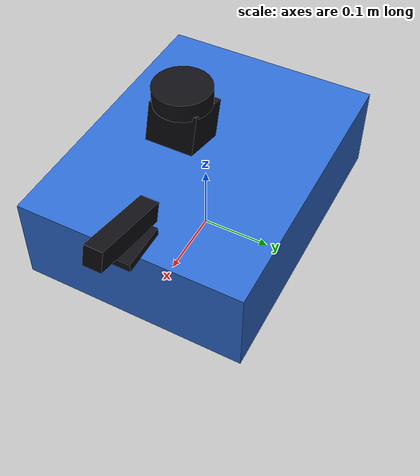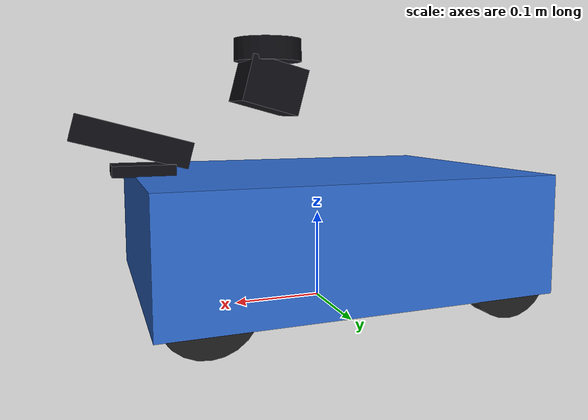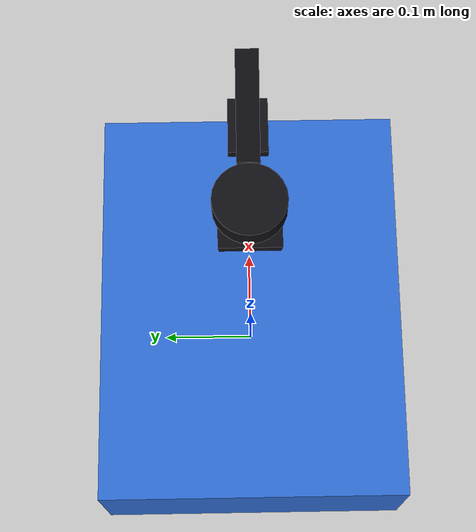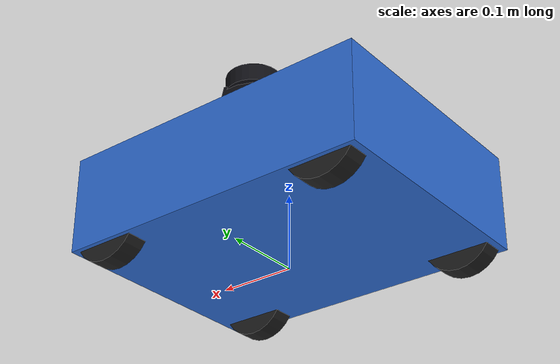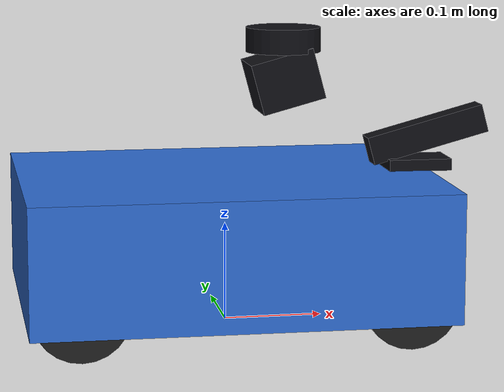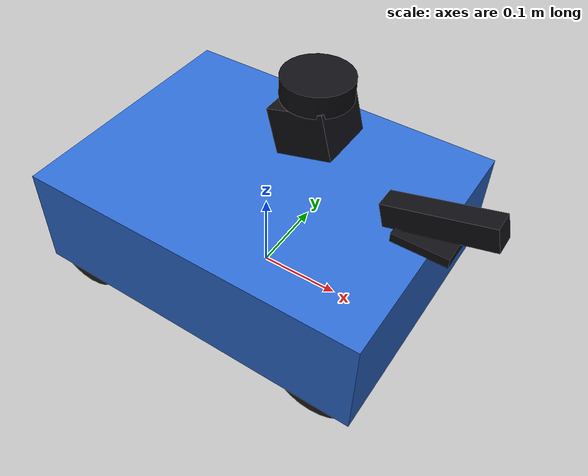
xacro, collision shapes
<?xml version="1.0"?>
<!--
  scout.urdf.xacro — Scout 探测先遣机

  传感器: RPLidar + Livox Mid-360 + RealSense D455 + AWR1642 + UWB + IMU
  尺寸: 420×320mm, 6.5kg
  网格: linorobot2 chassis.dae + tire.dae (坐标系已对齐)
-->
<robot name="scout" xmlns:xacro="http://ros.org/wiki/xacro">

  <xacro:include filename="$(find swarm_bringup)/urdf/common/common_properties.xacro"/>
  <xacro:include filename="$(find swarm_bringup)/urdf/common/chassis.xacro"/>
  <xacro:include filename="$(find swarm_bringup)/urdf/common/mecanum_wheel.xacro"/>
  <xacro:include filename="$(find swarm_bringup)/urdf/common/sensors.xacro"/>

  <!-- 底盘 -->
  <xacro:chassis length="0.42" width="0.32" height="0.129" mass="6.5"
    wheel_radius="0.048" wheel_pos_z="-0.040"
    mesh_file="package://swarm_bringup/meshes/shared/chassis.dae"
    body_material="body_blue" gazebo_r="0.18" gazebo_g="0.42" gazebo_b="0.82"/>

  <!-- 麦轮 (4个) -->
  <xacro:mecanum_wheel side="front_left"  radius="0.048" width="0.028"
    pos_x="0.160" pos_y="0.140" pos_z="-0.040" mass="0.15"
    mesh_file="package://swarm_bringup/meshes/shared/tire.dae"/>
  <xacro:mecanum_wheel side="front_right" radius="0.048" width="0.028"
    pos_x="0.160" pos_y="-0.140" pos_z="-0.040" mass="0.15"
    mesh_file="package://swarm_bringup/meshes/shared/tire.dae"/>
  <xacro:mecanum_wheel side="rear_left"   radius="0.048" width="0.028"
    pos_x="-0.160" pos_y="0.140" pos_z="-0.040" mass="0.15"
    mesh_file="package://swarm_bringup/meshes/shared/tire.dae"/>
  <xacro:mecanum_wheel side="rear_right"  radius="0.048" width="0.028"
    pos_x="-0.160" pos_y="-0.140" pos_z="-0.040" mass="0.15"
    mesh_file="package://swarm_bringup/meshes/shared/tire.dae"/>

  <!-- Scout 传感器 -->
  <xacro:lidar_2d x="0.06" y="0" z="0.20"/>
  <xacro:lidar_3d x="0.06" y="0" z="0.16"/>
  <xacro:depth_camera x="0.21" y="0" z="0.10"/>
  <xacro:radar_mmw x="0.20" y="0" z="0.07"/>
  <xacro:imu_sensor/>
  <xacro:uwb_tag x="-0.10" y="0" z="0.14"/>

  <!-- laser_link (TF 兼容) -->
  <link name="laser_link"/>
  <joint name="laser_joint" type="fixed">
    <parent link="lidar_link"/><child link="laser_link"/>
    <origin xyz="0 0 0" rpy="0 0 0"/>
  </joint>

  <!-- Gazebo -->
  <xacro:include filename="$(find swarm_bringup)/urdf/common/gazebo_plugins.xacro"/>
  <xacro:gazebo_mecanum namespace="scout"
    wheel_base="0.320" wheel_separation="0.280" wheel_radius="0.048"/>
</robot>

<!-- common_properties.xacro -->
<!--
  common_properties.xacro — 三机共用参数定义

  每个机器人 xacro include 此文件后可覆盖参数
-->
<robot xmlns:xacro="http://ros.org/wiki/xacro">
  <xacro:property name="pi" value="3.14159265358979"/>

  <!-- ═══ 底盘尺寸 (默认值, 各机器人可覆盖) ═══ -->
  <xacro:property name="base_length" value="0.42"/>
  <xacro:property name="base_width"  value="0.32"/>
  <xacro:property name="base_height" value="0.129"/>
  <xacro:property name="base_mass"   value="6.5"/>

  <!-- ═══ 麦轮参数 ═══ -->
  <xacro:property name="wheel_radius"  value="0.048"/>
  <xacro:property name="wheel_width"   value="0.028"/>
  <xacro:property name="wheel_pos_x"  value="0.160"/>  <!-- 半轴距 -->
  <xacro:property name="wheel_pos_y"  value="0.140"/>  <!-- 半轮距 -->
  <xacro:property name="wheel_pos_z"  value="-0.040"/> <!-- 轮心相对底盘底部偏移 -->
  <xacro:property name="wheel_mass"   value="0.15"/>

  <!-- ═══ 传感器安装位置 ═══ -->
  <xacro:property name="laser_pose">
    <origin xyz="0.06 0 0.20" rpy="0 0 0"/>
  </xacro:property>
  <xacro:property name="depth_sensor_pose">
    <origin xyz="0.21 0 0.10" rpy="0 -0.26 0"/>
  </xacro:property>
  <xacro:property name="radar_pose">
    <origin xyz="0.20 0 0.07" rpy="0 0 0"/>
  </xacro:property>

  <!-- ═══ 材质 ═══ -->
  <material name="body_blue"><color rgba="0.18 0.42 0.82 1.0"/></material>
  <material name="body_green"><color rgba="0.15 0.75 0.30 1.0"/></material>
  <material name="body_orange"><color rgba="0.92 0.52 0.12 1.0"/></material>
  <material name="dark"><color rgba="0.06 0.06 0.08 1.0"/></material>
  <material name="frame"><color rgba="0.22 0.22 0.24 1.0"/></material>
  <material name="accent"><color rgba="0.95 0.75 0.10 1.0"/></material>
  <material name="tire"><color rgba="0.12 0.12 0.12 1.0"/></material>
  <material name="hub"><color rgba="0.55 0.55 0.58 1.0"/></material>
  <material name="lens"><color rgba="0.15 0.15 0.20 1.0"/></material>
  <material name="arm_color"><color rgba="0.92 0.52 0.12 1.0"/></material>
</robot>

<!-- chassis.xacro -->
<!--
  chassis.xacro — 底盘宏定义 (参考 linorobot2 base.urdf.xacro)

  使用 DAE 网格文件显示, 使用 box 做碰撞体
  base_footprint → base_link 的 joint 高度自动计算
-->
<robot xmlns:xacro="http://ros.org/wiki/xacro" xmlns:gz="http://gazebosim.org/schema">
  <xacro:macro name="chassis" params="length width height mass wheel_radius wheel_pos_z mesh_file body_material gazebo_r gazebo_g gazebo_b">
    <!-- base_footprint (地面参考点) -->
    <link name="base_footprint"/>

    <!-- base_link (底盘主体) -->
    <link name="base_link">
      <visual>
        <origin xyz="0 0 0" rpy="0 0 0"/>
        <geometry>
          <xacro:if value="${mesh_file == ''}">
            <box size="${length} ${width} ${height}"/>
          </xacro:if>
          <xacro:unless value="${mesh_file == ''}">
            <mesh filename="${mesh_file}" scale="1 1 1"/>
          </xacro:unless>
        </geometry>
        <material name="${body_material}"/>
      </visual>

      <collision>
        <origin xyz="0 0 0" rpy="0 0 0"/>
        <geometry>
          <box size="${length} ${width} ${height}"/>
        </geometry>
      </collision>

      <inertial>
        <origin xyz="0 0 0" rpy="0 0 0"/>
        <mass value="${mass}"/>
        <inertia
          ixx="${(1/12) * mass * ((width * width) + (height * height))}"
          ixy="0.0" ixz="0.0"
          iyy="${(1/12) * mass * ((length * length) + (height * height))}"
          iyz="0.0"
          izz="${(1/12) * mass * ((length * length) + (width * width))}"/>
      </inertial>
    </link>

    <!-- Gazebo 材质 (参数化颜色) -->
    <gazebo reference="base_link">
      <visual>
        <material>
          <ambient>${gazebo_r} ${gazebo_g} ${gazebo_b} 1.0</ambient>
          <diffuse>${gazebo_r} ${gazebo_g} ${gazebo_b} 1.0</diffuse>
          <specular>0.3 0.3 0.3 1.0</specular>
          <emissive>0.0 0.0 0.0 0.0</emissive>
        </material>
      </visual>
    </gazebo>

    <!-- base_footprint → base_link (自动计算离地高度) -->
    <joint name="base_to_footprint" type="fixed">
      <parent link="base_footprint"/>
      <child link="base_link"/>
      <origin xyz="0 0 ${wheel_radius - wheel_pos_z}" rpy="0 0 0"/>
    </joint>
  </xacro:macro>
</robot>

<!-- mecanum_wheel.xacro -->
<!--
  mecanum_wheel.xacro — 麦克纳姆轮宏定义 (参考 linorobot2 mecanum_wheel.urdf.xacro)

  关键: mesh 需要 rpy="pi/2 0 0" 旋转 90° 才能正确对齐
  Gazebo 中为每个轮子设置正确的摩擦方向 (fdir1)
-->
<robot xmlns:xacro="http://ros.org/wiki/xacro" xmlns:gz="http://gazebosim.org/schema">
  <xacro:macro name="mecanum_wheel" params="side radius width pos_x pos_y pos_z mass mesh_file">
    <xacro:property name="pi" value="3.14159265358979"/>
    <link name="${side}_wheel_link">
      <visual>
        <!-- 关键: mesh 旋转 90° 使轮轴对齐 Y 轴 -->
        <origin xyz="0 0 0" rpy="${pi/2} 0 0"/>
        <geometry>
          <xacro:if value="${mesh_file == ''}">
            <cylinder radius="${radius}" length="${width}"/>
          </xacro:if>
          <xacro:unless value="${mesh_file == ''}">
            <mesh filename="${mesh_file}" scale="1 1 1"/>
          </xacro:unless>
        </geometry>
        <material name="tire"/>
      </visual>

      <collision>
        <origin xyz="0 0 0" rpy="${pi/2} 0 0"/>
        <geometry>
          <cylinder radius="${radius}" length="${width}"/>
        </geometry>
      </collision>

      <inertial>
        <origin xyz="0 0 0" rpy="0 0 0"/>
        <mass value="${mass}"/>
        <inertia
          ixx="${(2/5) * mass * (radius * radius)}"
          ixy="0" ixz="0"
          iyy="${(2/5) * mass * (radius * radius)}"
          iyz="0"
          izz="${(2/5) * mass * (radius * radius)}"/>
      </inertial>
    </link>

    <!-- Gazebo 麦轮摩擦参数 -->
    <gazebo reference="${side}_wheel_link">
      <collision>
        <surface>
          <friction>
            <ode>
              <mu>1.5</mu>
              <mu2>0.7</mu2>
              <kp>200000.0</kp>
              <kd>5000.0</kd>
              <xacro:if value="${side == 'front_left'}">
                <fdir1 gz:expressed_in="base_link">1 -1 0</fdir1>
              </xacro:if>
              <xacro:if value="${side == 'rear_left'}">
                <fdir1 gz:expressed_in="base_link">1 1 0</fdir1>
              </xacro:if>
              <xacro:if value="${side == 'front_right'}">
                <fdir1 gz:expressed_in="base_link">1 1 0</fdir1>
              </xacro:if>
              <xacro:if value="${side == 'rear_right'}">
                <fdir1 gz:expressed_in="base_link">1 -1 0</fdir1>
              </xacro:if>
            </ode>
          </friction>
        </surface>
      </collision>
    </gazebo>

    <!-- Gazebo 材质 -->
    <gazebo reference="${side}_wheel_link">
      <visual>
        <material>
          <ambient>0.12 0.12 0.12 1.0</ambient>
          <diffuse>0.12 0.12 0.12 1.0</diffuse>
          <specular>0.1 0.1 0.1 1.0</specular>
          <emissive>0.0 0.0 0.0 0.0</emissive>
        </material>
      </visual>
    </gazebo>

    <!-- 轮子关节 (continuous = 可旋转) -->
    <joint name="${side}_wheel_joint" type="continuous">
      <axis xyz="0 1 0"/>
      <parent link="base_link"/>
      <child link="${side}_wheel_link"/>
      <origin xyz="${pos_x} ${pos_y} ${pos_z}" rpy="0 0 0"/>
    </joint>
  </xacro:macro>
</robot>

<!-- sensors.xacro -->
<!--
  sensors.xacro — 传感器宏定义 (简化版, 字符串参数)

  所有传感器用 xyz 和 rpy 字符串参数定位
-->
<robot xmlns:xacro="http://ros.org/wiki/xacro">

  <!-- 2D LiDAR -->
  <xacro:macro name="lidar_2d" params="x y z">
    <link name="lidar_link">
      <visual><geometry><cylinder radius="0.038" length="0.025"/></geometry><material name="dark"/></visual>
      <collision><geometry><cylinder radius="0.038" length="0.025"/></geometry></collision>
    </link>
    <joint name="lidar_joint" type="fixed">
      <parent link="base_link"/><child link="lidar_link"/>
      <origin xyz="${x} ${y} ${z}" rpy="0 0 0"/>
    </joint>
  </xacro:macro>

  <!-- 3D LiDAR (Livox) -->
  <xacro:macro name="lidar_3d" params="x y z">
    <link name="livox_link">
      <visual><geometry><box size="0.065 0.065 0.052"/></geometry><material name="dark"/></visual>
      <collision><geometry><box size="0.065 0.065 0.052"/></geometry></collision>
    </link>
    <joint name="livox_joint" type="fixed">
      <parent link="base_link"/><child link="livox_link"/>
      <origin xyz="${x} ${y} ${z}" rpy="0 -0.262 0"/>
    </joint>
  </xacro:macro>

  <!-- 深度相机 -->
  <xacro:macro name="depth_camera" params="x y z">
    <link name="realsense_link">
      <visual><geometry><box size="0.124 0.026 0.029"/></geometry><material name="dark"/></visual>
      <collision><geometry><box size="0.124 0.026 0.029"/></geometry></collision>
    </link>
    <joint name="realsense_joint" type="fixed">
      <parent link="base_link"/><child link="realsense_link"/>
      <origin xyz="${x} ${y} ${z}" rpy="0 -0.262 0"/>
    </joint>
  </xacro:macro>

  <!-- 毫米波雷达 -->
  <xacro:macro name="radar_mmw" params="x y z">
    <link name="radar_link">
      <visual><geometry><box size="0.065 0.045 0.012"/></geometry><material name="dark"/></visual>
      <collision><geometry><box size="0.065 0.045 0.012"/></geometry></collision>
    </link>
    <joint name="radar_joint" type="fixed">
      <parent link="base_link"/><child link="radar_link"/>
      <origin xyz="${x} ${y} ${z}" rpy="0 0 0"/>
    </joint>
  </xacro:macro>

  <!-- IMU -->
  <xacro:macro name="imu_sensor">
    <link name="imu_link"/>
    <joint name="imu_joint" type="fixed">
      <parent link="base_link"/><child link="imu_link"/>
      <origin xyz="0.04 0 0.06" rpy="0 0 0"/>
    </joint>
  </xacro:macro>

  <!-- UWB -->
  <xacro:macro name="uwb_tag" params="x y z">
    <link name="uwb_tag">
      <visual><geometry><box size="0.025 0.025 0.008"/></geometry><material name="accent"/></visual>
    </link>
    <joint name="uwb_tag_j" type="fixed">
      <parent link="base_link"/><child link="uwb_tag"/>
      <origin xyz="${x} ${y} ${z}" rpy="0 0 0"/>
    </joint>
  </xacro:macro>

  <!-- 热成像 -->
  <xacro:macro name="thermal_camera" params="x y z">
    <link name="thermal_link">
      <visual><geometry><box size="0.035 0.035 0.025"/></geometry><material name="dark"/></visual>
      <collision><geometry><box size="0.035 0.035 0.025"/></geometry></collision>
    </link>
    <joint name="thermal_joint" type="fixed">
      <parent link="base_link"/><child link="thermal_link"/>
      <origin xyz="${x} ${y} ${z}" rpy="0 0 0"/>
    </joint>
  </xacro:macro>

  <!-- 机械臂 -->
  <xacro:macro name="robot_arm">
    <link name="arm_base">
      <visual><geometry><cylinder radius="0.035" length="0.015"/></geometry><material name="dark"/></visual>
      <collision><geometry><cylinder radius="0.035" length="0.015"/></geometry></collision>
    </link>
    <joint name="arm_base_j" type="fixed">
      <parent link="base_link"/><child link="arm_base"/>
      <origin xyz="-0.10 0 0.08" rpy="0 0 0"/>
    </joint>
    <link name="arm_link1">
      <visual><geometry><box size="0.035 0.035 0.15"/></geometry><material name="arm_color"/></visual>
      <collision><geometry><box size="0.035 0.035 0.15"/></geometry></collision>
      <inertial><origin xyz="0 0 0.075"/><mass value="0.5"/><inertia ixx="0.001" ixy="0" ixz="0" iyy="0.001" iyz="0" izz="0.0002"/></inertial>
    </link>
    <joint name="arm_j1" type="revolute">
      <parent link="arm_base"/><child link="arm_link1"/>
      <origin xyz="0 0 0.022" rpy="0 0 0"/><axis xyz="0 1 0"/>
      <limit lower="-1.57" upper="1.57" effort="10" velocity="3.0"/>
    </joint>
    <link name="arm_link2">
      <visual><geometry><box size="0.028 0.028 0.12"/></geometry><material name="arm_color"/></visual>
      <collision><geometry><box size="0.028 0.028 0.12"/></geometry></collision>
      <inertial><origin xyz="0 0 0.06"/><mass value="0.35"/><inertia ixx="0.0005" ixy="0" ixz="0" iyy="0.0005" iyz="0" izz="0.0001"/></inertial>
    </link>
    <joint name="arm_j2" type="revolute">
      <parent link="arm_link1"/><child link="arm_link2"/>
      <origin xyz="0 0 0.15" rpy="0 0 0"/><axis xyz="0 1 0"/>
      <limit lower="-1.57" upper="1.57" effort="10" velocity="3.0"/>
    </joint>
    <link name="gripper_base">
      <visual><geometry><box size="0.035 0.030 0.015"/></geometry><material name="dark"/></visual>
      <collision><geometry><box size="0.035 0.030 0.015"/></geometry></collision>
    </link>
    <joint name="gripper_j" type="revolute">
      <parent link="arm_link2"/><child link="gripper_base"/>
      <origin xyz="0 0 0.12" rpy="0 0 0"/><axis xyz="0 0 1"/>
      <limit lower="-1.57" upper="1.57" effort="5" velocity="2.0"/>
    </joint>
  </xacro:macro>

  <!-- 物资舱 -->
  <xacro:macro name="supply_bay">
    <link name="supply_box">
      <visual><geometry><box size="0.20 0.30 0.12"/></geometry><material name="dark"/></visual>
      <collision><geometry><box size="0.20 0.30 0.12"/></geometry></collision>
      <inertial><mass value="2.0"/><inertia ixx="0.02" ixy="0" ixz="0" iyy="0.03" iyz="0" izz="0.03"/></inertial>
    </link>
    <joint name="supply_box_j" type="fixed">
      <parent link="base_link"/><child link="supply_box"/>
      <origin xyz="-0.10 0 0.12" rpy="0 0 0"/>
    </joint>
  </xacro:macro>

  <!-- 路由器+天线 -->
  <xacro:macro name="router_antenna">
    <link name="router_box">
      <visual><geometry><box size="0.10 0.08 0.025"/></geometry><material name="dark"/></visual>
      <collision><geometry><box size="0.10 0.08 0.025"/></geometry></collision>
    </link>
    <joint name="router_box_j" type="fixed">
      <parent link="base_link"/><child link="router_box"/>
      <origin xyz="0.12 0 0.08" rpy="0 0 0"/>
    </joint>
    <link name="ant1"><visual><geometry><cylinder radius="0.005" length="0.12"/></geometry><material name="hub"/></visual></link>
    <joint name="ant1_j" type="fixed"><parent link="router_box"/><child link="ant1"/><origin xyz="0.035 0.025 0.075" rpy="0 0 0"/></joint>
    <link name="ant2"><visual><geometry><cylinder radius="0.005" length="0.12"/></geometry><material name="hub"/></visual></link>
    <joint name="ant2_j" type="fixed"><parent link="router_box"/><child link="ant2"/><origin xyz="0.035 -0.025 0.075" rpy="0 0 0"/></joint>
  </xacro:macro>

  <!-- LED 补光 -->
  <xacro:macro name="led_bar" params="x y z">
    <link name="led_bar">
      <visual><geometry><box size="0.010 0.065 0.008"/></geometry><material name="accent"/></visual>
    </link>
    <joint name="led_bar_j" type="fixed">
      <parent link="base_link"/><child link="led_bar"/>
      <origin xyz="${x} ${y} ${z}" rpy="0 0 0"/>
    </joint>
  </xacro:macro>
</robot>
